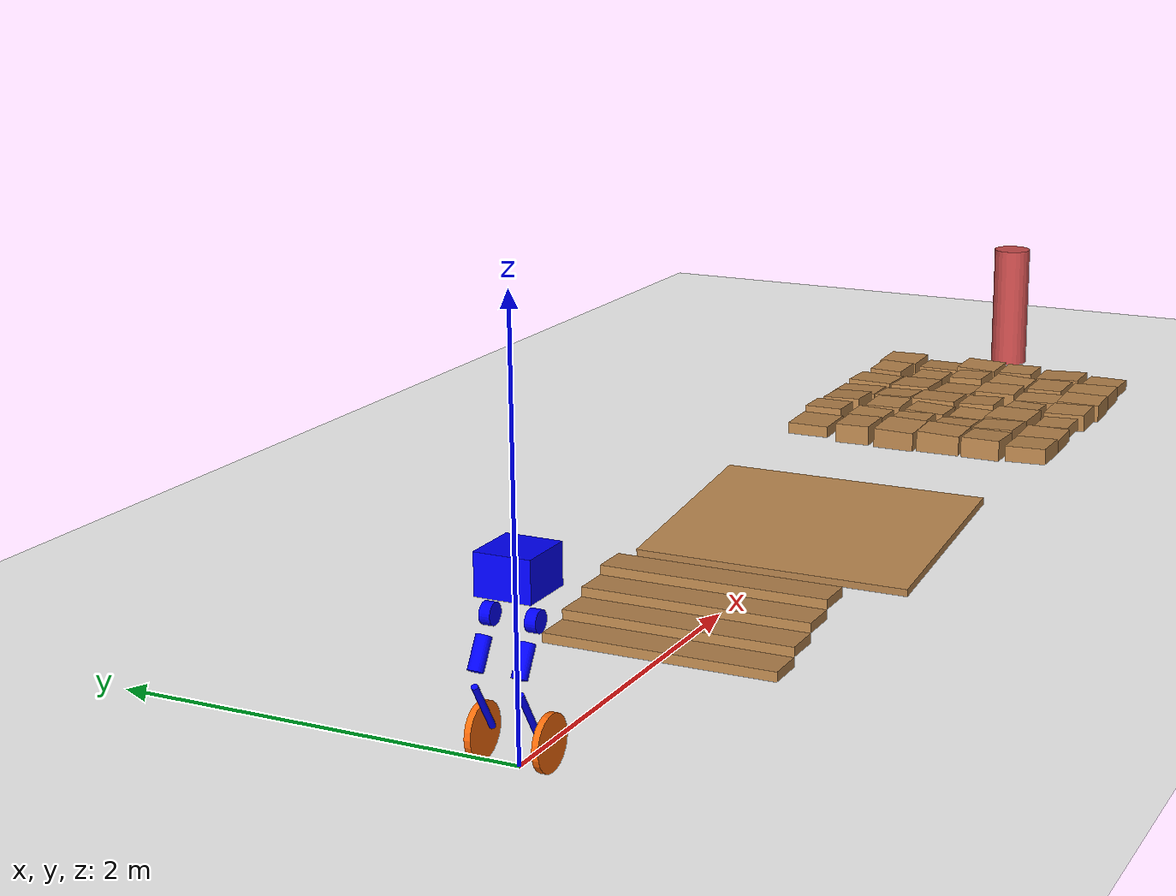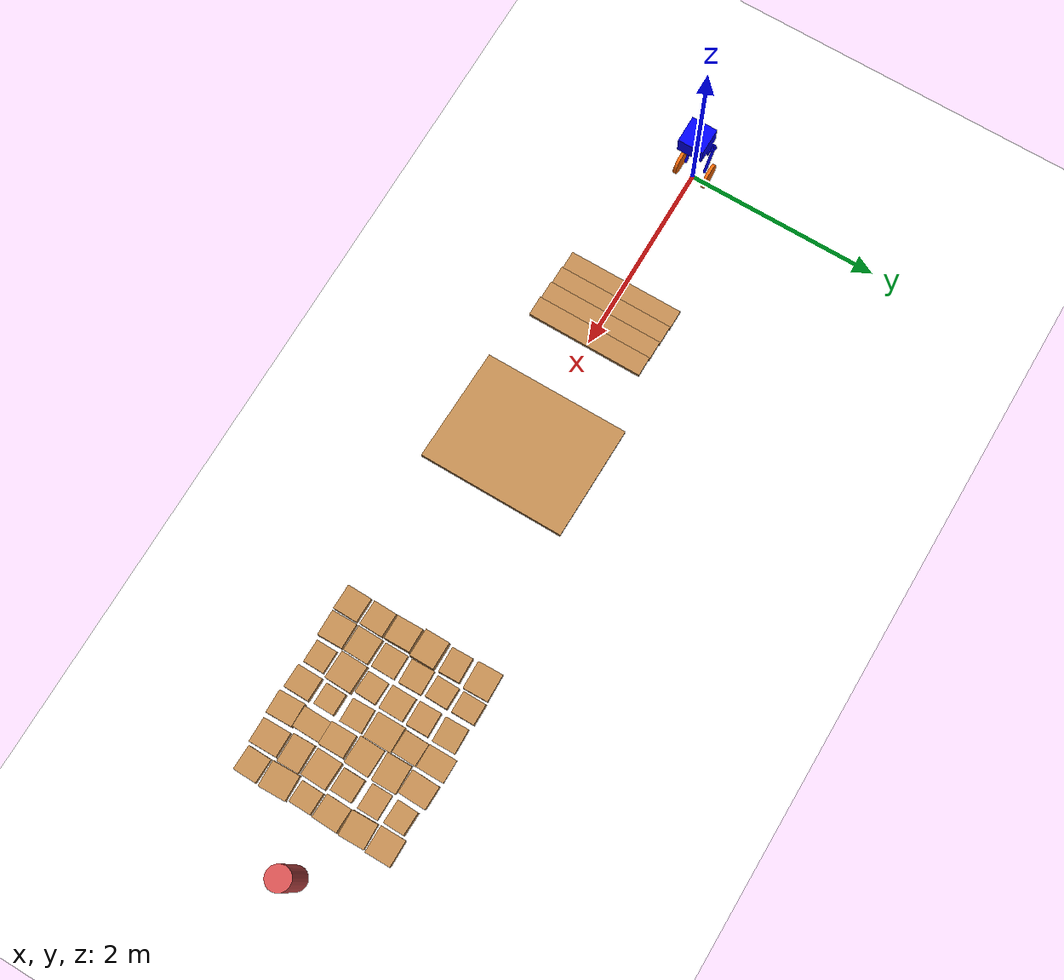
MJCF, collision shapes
<?xml version='1.0' encoding='utf-8'?>
<mujoco model="WF_TRON1B_terrain">
  <include file="robot.xml" />
  <asset />
  <worldbody>
    <geom pos="1.4 0.0 0.025" type="box" size="0.1 0.6 0.025" quat="1.0 0.0 0.0 0.0" group="0" rgba="0.72 0.52 0.30 1" contype="1" conaffinity="1" condim="3" friction="0.6 0.005 0.0001" />
    <geom pos="1.6 0.0 0.07500000000000001" type="box" size="0.1 0.6 0.025" quat="1.0 0.0 0.0 0.0" group="0" rgba="0.72 0.52 0.30 1" contype="1" conaffinity="1" condim="3" friction="0.6 0.005 0.0001" />
    <geom pos="1.8 0.0 0.125" type="box" size="0.1 0.6 0.025" quat="1.0 0.0 0.0 0.0" group="0" rgba="0.72 0.52 0.30 1" contype="1" conaffinity="1" condim="3" friction="0.6 0.005 0.0001" />
    <geom pos="2.0 0.0 0.175" type="box" size="0.1 0.6 0.025" quat="1.0 0.0 0.0 0.0" group="0" rgba="0.72 0.52 0.30 1" contype="1" conaffinity="1" condim="3" friction="0.6 0.005 0.0001" />
    <geom pos="3.2 0.0 0.1" type="box" size="0.6 0.75 0.02" quat="0.9982005399352042 0.0 -0.059964006479444595 0.0" group="0" rgba="0.72 0.52 0.30 1" contype="1" conaffinity="1" condim="3" friction="0.6 0.005 0.0001" />
    <geom pos="5.286658437861204 -0.5692857049168327 0.05" type="box" size="0.1254739818207668 0.12466274190880453 0.04791066174099832" quat="0.9998694876918152 -0.015064284131530251 0.0005916985181370093 -0.005807307411814126" group="0" rgba="0.72 0.52 0.30 1" contype="1" conaffinity="1" condim="3" friction="0.6 0.005 0.0001" />
    <geom pos="5.286658437861204 -0.2872368432334388 0.05" type="box" size="0.12274309393567162 0.11950106430514418 0.06380564604718919" quat="0.9998793844696178 -0.0005012029241834991 0.011490461189570398 -0.010437174423093547" group="0" rgba="0.72 0.52 0.30 1" contype="1" conaffinity="1" condim="3" friction="0.6 0.005 0.0001" />
    <geom pos="5.286658437861204 -0.013626331310230055 0.05" type="box" size="0.11990880740842433 0.13324798383694347 0.06924654573097364" quat="0.9997822468713061 0.017292445784051622 -0.009989160715175508 0.00605366236047087" group="0" rgba="0.72 0.52 0.30 1" contype="1" conaffinity="1" condim="3" friction="0.6 0.005 0.0001" />
    <geom pos="5.286658437861204 0.2616454630524535 0.05" type="box" size="0.14016572257226223 0.1252877793118794 0.0641094228464982" quat="0.9997461253536504 0.010756614279005743 -0.01967764211245784 -0.0021841452584476333" group="0" rgba="0.72 0.52 0.30 1" contype="1" conaffinity="1" condim="3" friction="0.6 0.005 0.0001" />
    <geom pos="5.286658437861204 0.5394412984923661 0.05" type="box" size="0.12635673497043207 0.10720689423302421 0.05933549605855445" quat="0.9998993480928952 -0.005851286978967873 -0.0010609739106064568 0.012881399708652333" group="0" rgba="0.72 0.52 0.30 1" contype="1" conaffinity="1" condim="3" friction="0.6 0.005 0.0001" />
    <geom pos="5.286658437861204 0.8267230168738141 0.05" type="box" size="0.1397736093209269 0.12880534633390042 0.0343417283145709" quat="0.9999076341666391 0.0038440279056564785 -0.0048688878468486 0.012092994495580241" group="0" rgba="0.72 0.52 0.30 1" contype="1" conaffinity="1" condim="3" friction="0.6 0.005 0.0001" />
    <geom pos="5.557921943848156 -0.5611720965777467 0.05" type="box" size="0.12931538941046386 0.13007911854837167 0.0395404612601189" quat="0.9998653200075249 0.003535409809311548 -0.014174135996619208 0.007479076980440945" group="0" rgba="0.72 0.52 0.30 1" contype="1" conaffinity="1" condim="3" friction="0.6 0.005 0.0001" />
    <geom pos="5.557921943848156 -0.2795581309086419 0.05" type="box" size="0.12850378966590825 0.12825689293874776 0.060020933830464834" quat="0.999718012253892 -0.018883859216982532 0.011979316167082928 -0.007986978175080565" group="0" rgba="0.72 0.52 0.30 1" contype="1" conaffinity="1" condim="3" friction="0.6 0.005 0.0001" />
    <geom pos="5.557921943848156 0.004306931948378501 0.05" type="box" size="0.1234016988436135 0.12069514842630377 0.03903498539467691" quat="0.9998751741685831 -0.012364241932213863 0.009791543010129211 -0.0009419598018625011" group="0" rgba="0.72 0.52 0.30 1" contype="1" conaffinity="1" condim="3" friction="0.6 0.005 0.0001" />
    <geom pos="5.557921943848156 0.28913295494496205 0.05" type="box" size="0.12249871379429239 0.11764447905027864 0.04340283374153374" quat="0.9997692200101707 -0.018045244626066236 -0.0023675898732630277 0.011413605251294309" group="0" rgba="0.72 0.52 0.30 1" contype="1" conaffinity="1" condim="3" friction="0.6 0.005 0.0001" />
    <geom pos="5.557921943848156 0.5644065807299884 0.05" type="box" size="0.1085912635473694 0.11503906367963038 0.045249538854823405" quat="0.999898249274822 0.011465683867250697 -0.005563105343530952 -0.006409450018463652" group="0" rgba="0.72 0.52 0.30 1" contype="1" conaffinity="1" condim="3" friction="0.6 0.005 0.0001" />
    <geom pos="5.557921943848156 0.8445410598564552 0.05" type="box" size="0.10661255938900815 0.11775283703832672 0.06835679733374983" quat="0.9999794972008361 -0.0014469637480482318 0.005943655693718223 0.0018932593242477489" group="0" rgba="0.72 0.52 0.30 1" contype="1" conaffinity="1" condim="3" friction="0.6 0.005 0.0001" />
    <geom pos="5.844495138438971 -0.5599964235243237 0.05" type="box" size="0.11414947928209244 0.10668742390458619 0.03538016485472074" quat="0.9997964436727286 -0.01827342891751023 -0.008211856180871937 -0.0023913245337751415" group="0" rgba="0.72 0.52 0.30 1" contype="1" conaffinity="1" condim="3" friction="0.6 0.005 0.0001" />
    <geom pos="5.844495138438971 -0.2779352036131706 0.05" type="box" size="0.14058868717391998 0.13674169731811356 0.06008251232493471" quat="0.9998966622802249 -0.004325505978265896 -0.004951693463079486 -0.012784189092217832" group="0" rgba="0.72 0.52 0.30 1" contype="1" conaffinity="1" condim="3" friction="0.6 0.005 0.0001" />
    <geom pos="5.844495138438971 -0.006198719621096971 0.05" type="box" size="0.11219578865716393 0.10981762850334953 0.03202111369918223" quat="0.9997317739404376 0.005620451301948004 -0.01879284119689509 -0.01231340005102785" group="0" rgba="0.72 0.52 0.30 1" contype="1" conaffinity="1" condim="3" friction="0.6 0.005 0.0001" />
    <geom pos="5.844495138438971 0.26869270492186736 0.05" type="box" size="0.11906078060917981 0.12560224152553692 0.034857792192345714" quat="0.9997640586779455 0.020005401868842754 0.008179452214828476 -0.002169662031953264" group="0" rgba="0.72 0.52 0.30 1" contype="1" conaffinity="1" condim="3" friction="0.6 0.005 0.0001" />
    <geom pos="5.844495138438971 0.5466894900071625 0.05" type="box" size="0.12155462334069807 0.11281141466489394 0.04720386738935177" quat="0.9998738861242266 -0.0054760520910069835 -0.012755568099912065 0.0077149324547960115" group="0" rgba="0.72 0.52 0.30 1" contype="1" conaffinity="1" condim="3" friction="0.6 0.005 0.0001" />
    <geom pos="5.844495138438971 0.8286794996306687 0.05" type="box" size="0.1247728487745991 0.1179404735333856 0.0644446252866439" quat="0.9996334832225946 -0.016160353814860105 0.019722053444592203 0.009098504974445405" group="0" rgba="0.72 0.52 0.30 1" contype="1" conaffinity="1" condim="3" friction="0.6 0.005 0.0001" />
    <geom pos="6.1216072658547205 -0.5622681963133476 0.05" type="box" size="0.11781199630932233 0.12897155864794826 0.05267163352611468" quat="0.9997217442759727 -0.01662659759131384 -0.016181280846705684 -0.004261035613931545" group="0" rgba="0.72 0.52 0.30 1" contype="1" conaffinity="1" condim="3" friction="0.6 0.005 0.0001" />
    <geom pos="6.1216072658547205 -0.2734318138848374 0.05" type="box" size="0.10752271764584337 0.10547010494088466 0.042258360501418575" quat="0.999793361177652 0.010999469869867188 0.0150968070458114 -0.008020787037230368" group="0" rgba="0.72 0.52 0.30 1" contype="1" conaffinity="1" condim="3" friction="0.6 0.005 0.0001" />
    <geom pos="6.1216072658547205 0.01603506921029052 0.05" type="box" size="0.1189483251497862 0.11289369714046157 0.047799835826062474" quat="0.9997534157851651 -0.018160204168040515 0.007676243345353408 0.010217137494078682" group="0" rgba="0.72 0.52 0.30 1" contype="1" conaffinity="1" condim="3" friction="0.6 0.005 0.0001" />
    <geom pos="6.1216072658547205 0.3054160825953601 0.05" type="box" size="0.1287002116220783 0.14295230339647166 0.04458217050795318" quat="0.9998978231550231 -0.0012356807469903555 0.014225348932186913 0.0006751227259465732" group="0" rgba="0.72 0.52 0.30 1" contype="1" conaffinity="1" condim="3" friction="0.6 0.005 0.0001" />
    <geom pos="6.1216072658547205 0.5794124012455607 0.05" type="box" size="0.11484433996637901 0.12243840752784782 0.039385997603237174" quat="0.9995662137825773 -0.01852248776190721 0.019345525311783934 -0.012249586192353303" group="0" rgba="0.72 0.52 0.30 1" contype="1" conaffinity="1" condim="3" friction="0.6 0.005 0.0001" />
    <geom pos="6.1216072658547205 0.8523024204761264 0.05" type="box" size="0.11631525941903743 0.1430883902429091 0.03393979202245437" quat="0.9998539113219124 -0.01680125143814779 0.0031386029017361826 -0.00015210592027166216" group="0" rgba="0.72 0.52 0.30 1" contype="1" conaffinity="1" condim="3" friction="0.6 0.005 0.0001" />
    <geom pos="6.393903924947018 -0.5698390503279271 0.05" type="box" size="0.1170377607773334 0.13447589367960466 0.05801473429964189" quat="0.9997144214220371 0.005345559354406918 -0.018855433207939382 0.013673815653678374" group="0" rgba="0.72 0.52 0.30 1" contype="1" conaffinity="1" condim="3" friction="0.6 0.005 0.0001" />
    <geom pos="6.393903924947018 -0.2931116214116788 0.05" type="box" size="0.10502237637913268 0.1439611647975166 0.03415441999220914" quat="0.9996643394838371 -0.017557420215549815 -0.017916561796211365 -0.006476277721081841" group="0" rgba="0.72 0.52 0.30 1" contype="1" conaffinity="1" condim="3" friction="0.6 0.005 0.0001" />
    <geom pos="6.393903924947018 -0.016719563673473936 0.05" type="box" size="0.11581351252042335 0.13043420514460644 0.06718441123208124" quat="0.9998511465581789 -0.0033470753187386194 -0.016191712791452994 0.0049305425649838214" group="0" rgba="0.72 0.52 0.30 1" contype="1" conaffinity="1" condim="3" friction="0.6 0.005 0.0001" />
    <geom pos="6.393903924947018 0.2645731839266544 0.05" type="box" size="0.13672559612469637 0.12790431414069958 0.03643538756437516" quat="0.9997972282730286 -0.009211101977396743 0.011892147863648683 -0.013387858571120605" group="0" rgba="0.72 0.52 0.30 1" contype="1" conaffinity="1" condim="3" friction="0.6 0.005 0.0001" />
    <geom pos="6.393903924947018 0.5534028137038757 0.05" type="box" size="0.14156501887800288 0.12697850809310532 0.0484062433999594" quat="0.99978643941289 -0.006517032214170458 0.01917098909841184 0.004132436836019887" group="0" rgba="0.72 0.52 0.30 1" contype="1" conaffinity="1" condim="3" friction="0.6 0.005 0.0001" />
    <geom pos="6.393903924947018 0.8397528216562394 0.05" type="box" size="0.1183968659172918 0.14387580977420789 0.04789151312288382" quat="0.9998643731359828 0.004051838723889919 0.006548030814768813 -0.014558201427123201" group="0" rgba="0.72 0.52 0.30 1" contype="1" conaffinity="1" condim="3" friction="0.6 0.005 0.0001" />
    <geom pos="6.682022584832401 -0.5514938344066543 0.05" type="box" size="0.12362348356530965 0.14244388069933883 0.04716069160485392" quat="0.9997670005708806 -0.007690541604195075 -0.01923033946497338 0.006082284389989623" group="0" rgba="0.72 0.52 0.30 1" contype="1" conaffinity="1" condim="3" friction="0.6 0.005 0.0001" />
    <geom pos="6.682022584832401 -0.2729836060466023 0.05" type="box" size="0.1427319145623315 0.11206204937189787 0.048398939113608534" quat="0.9999586566789755 -0.006069700531033801 -0.00020702054835943415 0.006767629624524169" group="0" rgba="0.72 0.52 0.30 1" contype="1" conaffinity="1" condim="3" friction="0.6 0.005 0.0001" />
    <geom pos="6.682022584832401 -0.0014945053246612217 0.05" type="box" size="0.13851996577533002 0.13204924470704055 0.04334561245585293" quat="0.9995804705991564 0.01732463640618454 -0.01948660456658661 -0.012609996535592199" group="0" rgba="0.72 0.52 0.30 1" contype="1" conaffinity="1" condim="3" friction="0.6 0.005 0.0001" />
    <geom pos="6.682022584832401 0.27571641120599055 0.05" type="box" size="0.11480583697267202 0.11036924429321361 0.06348187179956163" quat="0.9998204293115682 -0.01777594102735928 0.001986812422129765 -0.006259203481461057" group="0" rgba="0.72 0.52 0.30 1" contype="1" conaffinity="1" condim="3" friction="0.6 0.005 0.0001" />
    <geom pos="6.682022584832401 0.5588333285094541 0.05" type="box" size="0.1263355070983095 0.10595467588029901 0.03015061803680381" quat="0.9999827668424796 -0.0009889986489226134 -0.004629929818327343 -0.0034715485894987537" group="0" rgba="0.72 0.52 0.30 1" contype="1" conaffinity="1" condim="3" friction="0.6 0.005 0.0001" />
    <geom pos="6.682022584832401 0.8339852985383446 0.05" type="box" size="0.11785599022889291 0.1068726273152445 0.06547821350544047" quat="0.9997420753100442 0.007823538471672832 -0.01647390016004406 -0.013534611707223854" group="0" rgba="0.72 0.52 0.30 1" contype="1" conaffinity="1" condim="3" friction="0.6 0.005 0.0001" />
    <geom pos="6.959881216573879 -0.5580837631959525 0.05" type="box" size="0.12232224353878716 0.11968339310178128 0.03445109722201385" quat="0.9999384955510556 0.001979741210030325 -0.001225167043129113 -0.010843648166050504" group="0" rgba="0.72 0.52 0.30 1" contype="1" conaffinity="1" condim="3" friction="0.6 0.005 0.0001" />
    <geom pos="6.959881216573879 -0.27075121281133574 0.05" type="box" size="0.12804672706220294 0.14059372189592745 0.0512324108527214" quat="0.999713541033059 -0.01992754314262179 0.002021481561237037 0.013101240847295912" group="0" rgba="0.72 0.52 0.30 1" contype="1" conaffinity="1" condim="3" friction="0.6 0.005 0.0001" />
    <geom pos="6.959881216573879 0.01873345956251027 0.05" type="box" size="0.10838908888492789 0.11292456952779742 0.06320657283771929" quat="0.9997474872715022 -0.012486491454264104 -0.01548047134724456 -0.010459647811821363" group="0" rgba="0.72 0.52 0.30 1" contype="1" conaffinity="1" condim="3" friction="0.6 0.005 0.0001" />
    <geom pos="6.959881216573879 0.29026878108575305 0.05" type="box" size="0.1198979730536302 0.13018358151583068 0.06823354179838362" quat="0.99965756941814 0.01046499369020409 -0.019189818139865075 -0.014386754041121348" group="0" rgba="0.72 0.52 0.30 1" contype="1" conaffinity="1" condim="3" friction="0.6 0.005 0.0001" />
    <geom pos="6.959881216573879 0.5612447620784077 0.05" type="box" size="0.1255906589819788 0.13308643239261117 0.03529484895052208" quat="0.9997390811232689 0.003837373536274321 0.01970180049183906 0.01090336170751147" group="0" rgba="0.72 0.52 0.30 1" contype="1" conaffinity="1" condim="3" friction="0.6 0.005 0.0001" />
    <geom pos="6.959881216573879 0.8471177826174924 0.05" type="box" size="0.13367076298176622 0.12949571286881198 0.059809793012424825" quat="0.9998407283368805 -0.00784707468614169 -0.016024566918532674 0.0003932336708129532" group="0" rgba="0.72 0.52 0.30 1" contype="1" conaffinity="1" condim="3" friction="0.6 0.005 0.0001" />
    <geom pos="7.6 0.3 0.4" type="cylinder" size="0.12 0.4" quat="1.0 0.0 0.0 0.0" group="0" rgba="0.8 0.3 0.3 1" contype="1" conaffinity="1" condim="3" friction="0.6 0.005 0.0001" />
  </worldbody>
</mujoco>

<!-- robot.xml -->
<mujoco model="wheel_biped">
    <compiler angle="radian" meshdir="../meshes/" />
    <size njmax="500" nconmax="100" />

    <default>
        <light castshadow="false" diffuse="1 1 1" />
        <camera fovy="60"/>
        <default class="visual">
            <geom contype="0" conaffinity="0" group="1" type="mesh" rgba="0.9 0.9 0.9 1.0"/>
        </default>
        <joint armature="0.01" damping="0.01"/>
        <geom contype="1" conaffinity="1" condim="3" friction="0.6 0.005 0.0001" rgba="0.5 0.6 0.7 0.0" margin="0.001" group="0" />
    </default>
    <visual>
        <global offwidth="848" offheight="480"/>
        <rgba com="0.502 1.0 0 0.5" contactpoint="1.0 1.0 0.6 0.4" contactforce="0.2 0.98 0.2 0.8"/>
        <scale com="0.2" forcewidth="0.05" contactwidth="0.10" contactheight="0.04"/>
    </visual>

    <asset>
        <mesh name="base_Link" file="base_Link.STL" />
        <mesh name="abad_L_Link" file="abad_L_Link.STL" />
        <mesh name="hip_L_Link" file="hip_L_Link.STL" />
        <mesh name="knee_L_Link" file="knee_L_Link.STL" />
        <mesh name="wheel_L_Link" file="wheel_L_Link.STL" />
        <mesh name="abad_R_Link" file="abad_R_Link.STL" />
        <mesh name="hip_R_Link" file="hip_R_Link.STL" />
        <mesh name="knee_R_Link" file="knee_R_Link.STL" />
        <mesh name="wheel_R_Link" file="wheel_R_Link.STL" />
    </asset>

    <asset>
        <texture type='skybox' builtin='gradient' width='512' height='512' rgb1="1.0 1.0 1.0" rgb2="1.0 1.0 1.0"/>
        <texture name="texplane" type="2d" builtin="checker" rgb1="1 1 1" rgb2="0.85 0.85 0.85" width="512" height="512" mark="cross" markrgb=".8 .8 .8"/>
        <material name="matplane" reflectance="0.0" texture="texplane" texrepeat="1 1" texuniform="true"/>
    </asset>
        <option timestep="0.001"/>

    <worldbody>
        <geom name="floor" rgba="1 1 1 1" pos="0 0 0" size="0 0 0.25" type="plane" material="matplane" condim="3"/>
        <camera name="track" mode="trackcom" pos="-1.3 -2.3 2.6" xyaxes="1 -1 0 0 0.707 0.707"/>
        <light directional="true" diffuse=".8 .8 .8" pos="0 0 10" dir="0 0 -10"/>

        <body name="base_Link" pos="0 0 0.92">
            <inertial pos="0.0457123 0.000139854 -0.163809" quat="0.972578 -0.00615364 -0.232461 0.00398682" mass="9.595" diaginertia="0.154712 0.11093 0.0846371" />
            <joint type="free" limited="false" damping="0.0000" stiffness="0.0000" armature="0"/>
            <site name="imu" pos="0 0 0"/>
            <geom class="visual" rgba="0.79216 0.81961 0.93333 1" mesh="base_Link" />
            <geom name="base_collision" size="0.135 0.13 0.095" pos="0.03 0 -0.072" type="box" rgba="0 0 1 0" />
            <camera name="d435" pos="0.13223 0.0222 -0.26826" euler="0 -0.507 -1.5708" fovy="58"/>

            <body name="abad_L_Link" pos="0.05556 0.105 -0.2602">
                <inertial pos="-0.06977 0.04479 0.00057" quat="0.595024 0.579772 0.394141 0.393019" mass="1.469" diaginertia="0.00252289 0.00208104 0.00139163" />
                <joint name="abad_L_Joint" pos="0 0 0" axis="1 0 0" limited="true" range="-0.38397 1.39626" />
                <geom class="visual" rgba="0.79216 0.81961 0.93333 1" mesh="abad_L_Link" />
                <geom name="abad_L_collision" type="cylinder" pos="-0.08 0 0" euler="1.57 0 0" size="0.05 0.025" rgba="0 0 1 0" />

                <body name="hip_L_Link" pos="-0.077 0.0205 0">
                    <inertial pos="-0.02869 -0.0477 -0.03992" quat="0.853885 0.192797 0.226903 0.426877" mass="2.3" diaginertia="0.0233264 0.0230229 0.00277548" />
                    <joint name="hip_L_Joint" pos="0 0 0" axis="0 1 0" limited="true" range="-1.01229 1.39626" />
                    <geom class="visual" rgba="1 1 1 1" mesh="hip_L_Link" />
                    <geom name="hip_L_collision" type="cylinder" pos="-0.1 -0.025 -0.14" euler="0 0.53 0" size="0.035 0.075" rgba="0 0 1 0" />

                    <body name="knee_L_Link" pos="-0.15 -0.0205 -0.25981">
                        <inertial pos="0.11913 0.01106 -0.20363" quat="0.687012 -0.159981 -0.201582 0.679548" mass="1.49" diaginertia="0.0177107 0.0171855 0.001015" />
                        <joint name="knee_L_Joint" pos="0 0 0" axis="0 -1 0" limited="true" range="-0.872665 1.36136" />
                        <geom class="visual" rgba="0.79216 0.81961 0.93333 1" mesh="knee_L_Link" />
                        <geom name="knee_L_collision" type="cylinder" pos="0.078 0 -0.12" euler="0 -0.55 0" size="0.015 0.13" rgba ="0 0 1 0"/>

                        <body name="wheel_L_Link" pos="0.15 0.0435 -0.25981">
                            <inertial pos="3e-05 0.00807 -2e-05" quat="0.683013 0.183016 0.183017 0.683011" mass="1.08" diaginertia="0.00974272 0.00515568 0.00515344" />
                            <joint name="wheel_L_Joint" pos="0 0 0" axis="0 1 0" limited="true" range="-1000000 1000000" frictionloss="0.01" />
                            <geom class="visual" rgba="0.26667 0.26667 0.26667 1" mesh="wheel_L_Link" />
                            <geom name="wheel_L_collision" pos="0.0 0.008 0.0" size="0.127 0.015" quat="0.707107 0.707107 0 0" type="cylinder" rgba="1 0.423529 0.0392157 1" />
                        </body>
                    </body>
                </body>
            </body>
            <body name="abad_R_Link" pos="0.05556 -0.105 -0.2602">
                <inertial pos="-0.06977 -0.04479 0.00057" quat="0.393019 0.394141 0.579772 0.595024" mass="1.469" diaginertia="0.00252289 0.00208104 0.00139163" />
                <joint name="abad_R_Joint" pos="0 0 0" axis="1 0 0" limited="true" range="-1.39626 0.38397" />
                <geom class="visual" rgba="0.79216 0.81961 0.93333 1" mesh="abad_R_Link" />
                <geom name="abad_R_collision" type="cylinder" pos="-0.08 0 0" euler="1.57 0 0" size="0.05 0.025" rgba="0 0 1 0" />

                <body name="hip_R_Link" pos="-0.077 -0.0205 0">
                    <inertial pos="-0.02869 0.0477 -0.03992" quat="0.426877 0.226903 0.192797 0.853885" mass="2.3" diaginertia="0.0233264 0.0230229 0.00277548" />
                    <joint name="hip_R_Joint" pos="0 0 0" axis="0 -1 0" limited="true" range="-1.39626 1.01229" />
                    <geom class="visual" rgba="1 1 1 1" mesh="hip_R_Link" />
                    <geom name="hip_R_collision" type="cylinder" pos="-0.10 0.025 -0.14" euler="0 0.53 0" size="0.035 0.075" rgba="0 0 1 0" />

                    <body name="knee_R_Link" pos="-0.15 0.0205 -0.25981">
                        <inertial pos="0.11913 -0.01106 -0.20363" quat="0.679548 -0.201582 -0.159981 0.687012" mass="1.49" diaginertia="0.0177107 0.0171855 0.001015" />
                        <joint name="knee_R_Joint" pos="0 0 0" axis="0 1 0" limited="true" range="-1.36136 0.872665" />
                        <geom class="visual" rgba="0.79216 0.81961 0.93333 1" mesh="knee_R_Link" />
                        <geom name="knee_R_collision" type="cylinder" pos="0.078 0 -0.12" euler="0 -0.55 0" size="0.015 0.13" rgba ="0 0 1 0"/>

                        <body name="wheel_R_Link" pos="0.15 -0.0435 -0.25981">
                            <inertial pos="3e-05 -0.00807 -2e-05" quat="0.683011 0.183017 0.183016 0.683013" mass="1.08" diaginertia="0.00974272 0.00515568 0.00515344" />
                            <joint name="wheel_R_Joint" pos="0 0 0" axis="0 1 0" limited="true" range="-1000000 1000000" frictionloss="0.01" />
                            <geom class="visual" rgba="0.26667 0.26667 0.26667 1" mesh="wheel_R_Link" />
                            <geom name="wheel_R_collision" pos="0.0 -0.008 0.0" size="0.127 0.015" quat="0.707107 0.707107 0 0" type="cylinder" rgba="1 0.423529 0.0392157 1" />
                        </body>
                    </body>
                </body>
            </body>
        </body>
    </worldbody>

    <actuator>
        <motor name="abad_L_Joint"   gear="1"  joint="abad_L_Joint"  ctrllimited='true' ctrlrange='-80 80'/>
        <motor name="hip_L_Joint"    gear="1"  joint="hip_L_Joint"   ctrllimited='true' ctrlrange='-80 80'/>
        <motor name="knee_L_Joint"   gear="1"  joint="knee_L_Joint"  ctrllimited='true' ctrlrange='-80 80'/>
        <motor name="wheel_L_Joint"  gear="1"  joint="wheel_L_Joint" ctrllimited='true' ctrlrange='-40 40'/>
        <motor name="abad_R_Joint"   gear="1"  joint="abad_R_Joint"  ctrllimited='true' ctrlrange='-80 80' />
        <motor name="hip_R_Joint"    gear="1"  joint="hip_R_Joint"   ctrllimited='true' ctrlrange='-80 80' />
        <motor name="knee_R_Joint"   gear="1"  joint="knee_R_Joint"  ctrllimited='true' ctrlrange='-80 80'/>
        <motor name="wheel_R_Joint"  gear="1"  joint="wheel_R_Joint" ctrllimited='true' ctrlrange='-40 40'/>
    </actuator>

    <sensor>
        <framequat name="quat" objtype="site" objname="imu"/>
        <gyro name="gyro" site="imu"/>
        <accelerometer name="acc" site="imu"/>
        <jointpos name="abad_L_Joint"    joint="abad_L_Joint" />
        <jointpos name="hip_L_Joint"     joint="hip_L_Joint" />
        <jointpos name="knee_L_Joint"    joint="knee_L_Joint" />
        <jointpos name="wheel_L_Joint"   joint="wheel_L_Joint" />
        <jointpos name="abad_R_Joint"    joint="abad_R_Joint" />
        <jointpos name="hip_R_Joint"     joint="hip_R_Joint" />
        <jointpos name="knee_R_Joint"    joint="knee_R_Joint" />
        <jointpos name="wheel_R_Joint"   joint="wheel_R_Joint" />
    </sensor>

</mujoco>
